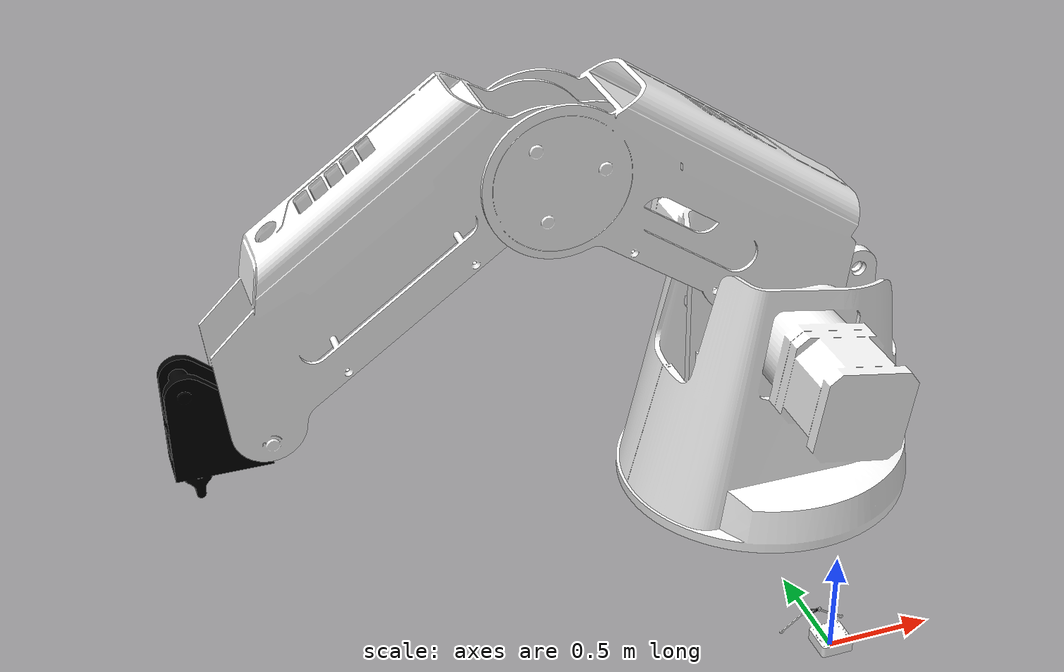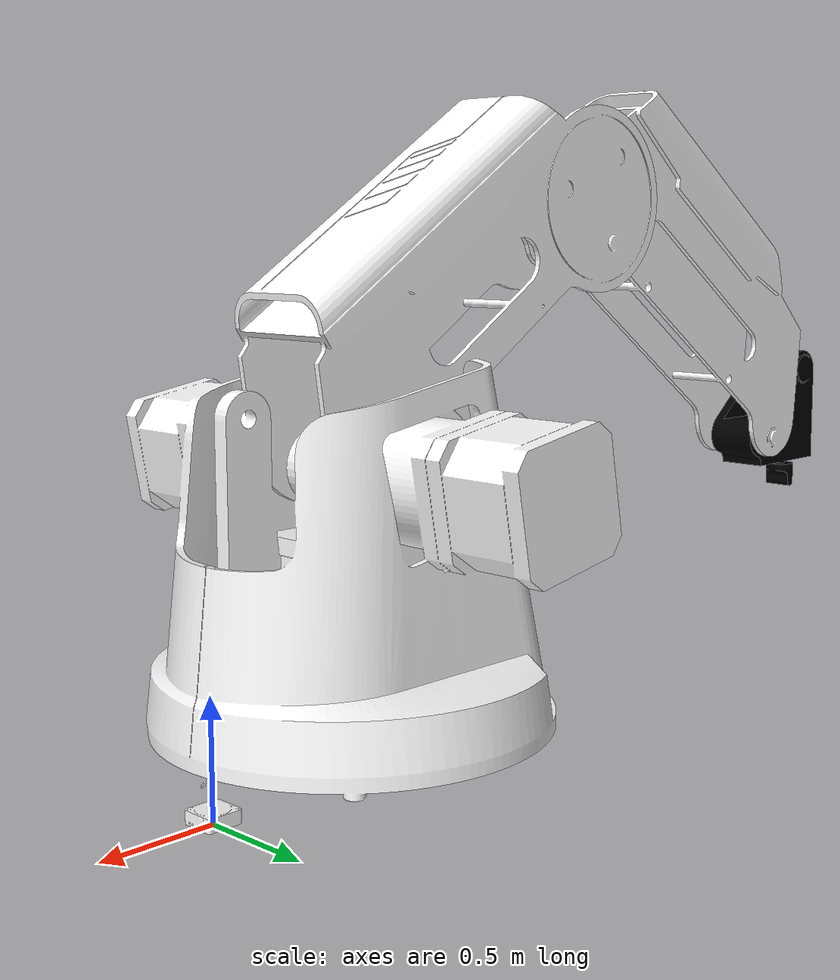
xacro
<?xml version="1.0"?>
<robot name="dobot">
	<material name="black">
    <color rgba="0 0 0 1"/>
  </material>
  <material name="white">
    <color rgba="1 1 1 1"/>
  </material>
  <link name="base_link">
    <visual>
      <origin rpy="0 0 0" xyz="0.006535 -0.0812 0"/>
      <geometry>
        <mesh filename="package://dobot/urdf/meshes/0part.stl" scale="0.01 0.01 0.01"/>
      </geometry>
      <material name="white"/>
    </visual>
  </link>

<link name="link_1">
    <visual>
      <origin rpy="0 0 0" xyz="0.006535 -0.0812 -0.1"/>
      <geometry>
        <mesh filename="package://dobot/urdf/meshes/1part.stl" scale="0.01 0.01 0.01"/>
      </geometry>
      <material name="white"/>
    </visual>
  </link>
<link name="link_2">
    <visual>
      <origin rpy="0 0 0" xyz="0.006535 -0.0812 -0.143"/>
      <geometry>
        <mesh filename="package://dobot/urdf/meshes/2.stl" scale="0.01 0.01 0.01"/>
      </geometry>
      <material name="white"/>
    </visual>
</link>

<link name="link_2_1">
    <visual>
      <origin rpy="0 0.57 0" xyz="0 0 0"/>
      <geometry>
        <mesh filename="package://dobot/urdf/meshes/sterz2_1.stl" scale="0.01 0.01 0.01"/>
      </geometry>
      <material name="white"/>
    </visual>
</link>
<link name="link_3">
    <visual>
      <origin rpy="0 0 0" xyz="0.119 -0.0813 -0.217"/>
      <geometry>
        <mesh filename="package://dobot/urdf/meshes/3.stl" scale="0.01 0.01 0.01"/>
      </geometry>
      <material name="white"/>
    </visual>
</link>
<link name="triangle">
    <visual>
      <origin rpy="0 0.16 0" xyz="0 0 0"/>
      <geometry>
        <mesh filename="package://dobot/urdf/meshes/trianglestab.stl" scale="0.01 0.01 0.01"/>
      </geometry>
      <material name="black"/>
    </visual>
</link>

<link name="link_3_1">
    <visual>
      <origin rpy="0 -0.65 0" xyz="0 0 0"/>
      <geometry>
        <mesh filename="package://dobot/urdf/meshes/sterz3_1.stl" scale="0.01 0.01 0.01"/>
      </geometry>
      <material name="white"/>
    </visual>
</link>

<link name="link_4">
    <visual>
      <origin rpy="0 0 0" xyz="0.272 -0.079 -0.16"/>
      <geometry>
        <mesh filename="package://dobot/urdf/meshes/raborg.stl" scale="0.01 0.01 0.01"/>
      </geometry>
      <material name="black"/>
    </visual>
</link>

<joint name="0-1" type="revolute">
  	<axis xyz="0 0 1"/>
    <limit effort="1000.0" lower="-2.39" upper="2.108" velocity="1"/>
			<parent link="base_link"/>
			<child link="link_1"/>
			<origin xyz="0 0 0.1" rpy="0 0 0"/>
</joint>

<joint name="1-2" type="revolute">
  	<axis xyz="0 1 0"/>
    <limit effort="1000.0" lower="-0.18" upper="1.77" velocity="1"/>
			<parent link="link_1"/>
			<child link="link_2"/>
			<origin xyz="0 0 0.042" rpy="0 0 0"/>
		</joint>
	<joint name="1-2_1" type="revolute">
  	<axis xyz="0 1 0"/>
    <limit effort="1000.0" lower="-6.28" upper="6.28" velocity="1"/>
			<parent link="link_1"/>
			<child link="link_2_1"/>
			<origin xyz="0.04 -0.009 0.0625" rpy="0 0 0"/>
		</joint>
<joint name="2-3" type="revolute">
  	<axis xyz="0 1 0"/>
    <limit effort="1000.0" lower="-0.34" upper="1.12" velocity="1"/>
			<parent link="link_2"/>
			<child link="link_3"/>
			<origin xyz="-0.11246 0 0.0744" rpy="0 0 0"/>
		</joint>
		<joint name="2_1-triangle" type="revolute">
  	<axis xyz="0 1 0"/>
    <limit effort="1000.0" lower="-6.28" upper="6.28" velocity="1"/>
			<parent link="link_2_1"/>
			<child link="triangle"/>
			<origin xyz="-0.1137 0.005 0.073" rpy="0 0 0"/>
		</joint>

	<joint name="triangle-3_1" type="revolute">
  		<axis xyz="0 1 0"/>
    <limit effort="1000.0" lower="-6.28" upper="6.28" velocity="1"/>
			<parent link="triangle"/>
			<child link="link_3_1"/>
			<origin xyz="-0.071 0 0.0115" rpy="0 0 0"/>
	</joint>

	<joint name="3_1-4" type="revolute">
  		<axis xyz="0 1 0"/>
    <limit effort="1000.0" lower="-6.28" upper="6.28" velocity="1"/>
			<parent link="link_3_1"/>
			<child link="link_4"/>
			<origin xyz="-0.117 0 -0.0888" rpy="0 0 0"/>
	</joint>

  </robot>
